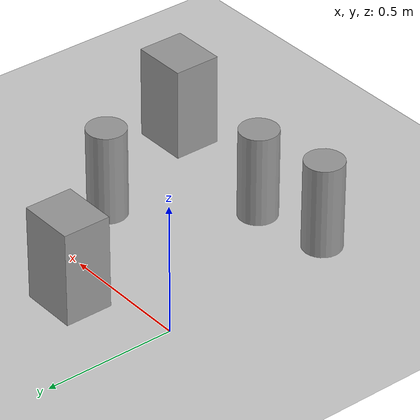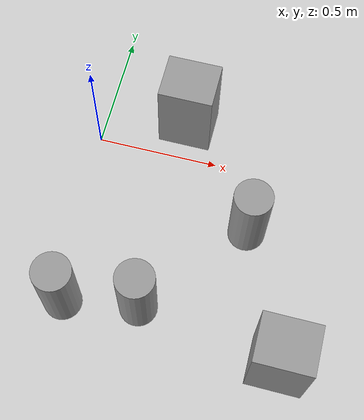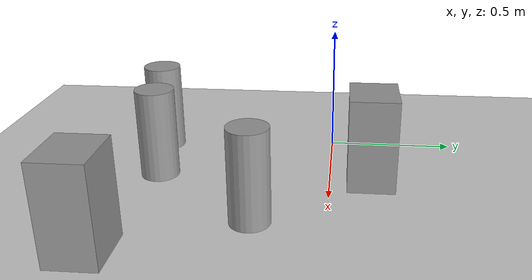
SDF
<sdf version="1.6">
 <world name="default">
  <light name="sun" type="directional">
   <pose>0 0 10 0 -0 0</pose>
   <diffuse>0.8 0.8 0.8 1</diffuse>
   <specular>0.2 0.2 0.2 1</specular>
   <attenuation>
    <range>1000</range>
    <constant>0.9</constant>
    <linear>0.01</linear>
    <quadratic>0.001</quadratic>
   </attenuation>
   <direction>-0.5 0.1 -0.9</direction>
  </light>
  <model name="ground_plane">
   <static>1</static>
   <link name="link">
    <collision name="collision">
     <geometry><plane><normal>0 0 1</normal><size>100 100</size></plane></geometry>
     <surface><friction><ode><mu>100</mu><mu2>50</mu2></ode></friction></surface>
    </collision>
    <visual name="visual">
     <cast_shadows>0</cast_shadows>
     <geometry><plane><normal>0 0 1</normal><size>100 100</size></plane></geometry>
     <material>
      <script><uri>file://media/materials/scripts/gazebo.material</uri><name>Gazebo/Grey</name></script>
     </material>
    </visual>
   </link>
  </model>
  <gravity>0 0 -9.8</gravity>
  <magnetic_field>6e-06 2.3e-05 -4.2e-05</magnetic_field>
  <atmosphere type="adiabatic"/>
  <physics name="default_physics" default="0" type="ode">
   <max_step_size>0.001</max_step_size>
   <real_time_factor>1</real_time_factor>
   <real_time_update_rate>1000</real_time_update_rate>
  </physics>
  <scene><ambient>0.4 0.4 0.4 1</ambient><background>0.7 0.7 0.7 1</background><shadows>1</shadows></scene>
  <spherical_coordinates>
   <surface_model>EARTH_WGS84</surface_model>
   <latitude_deg>0</latitude_deg>
   <longitude_deg>0</longitude_deg>
   <elevation>0</elevation>
   <heading_deg>0</heading_deg>
  </spherical_coordinates>
  <model name="unit_cylinder">
   <pose>0.06107 -0.722183 0.177366 0 0 -8e-06</pose>
   <link name="link">
    <inertial>
     <mass>1</mass>
     <inertia><ixx>0.145833</ixx><ixy>0</ixy><ixz>0</ixz><iyy>0.145833</iyy><iyz>0</iyz><izz>0.125</izz></inertia>
    </inertial>
    <collision name="collision">
     <geometry><cylinder><radius>0.0746705</radius><length>0.35475</length></cylinder></geometry>
    </collision>
    <visual name="visual">
     <geometry><cylinder><radius>0.0746705</radius><length>0.35475</length></cylinder></geometry>
     <material>
      <script><name>Gazebo/Grey</name><uri>file://media/materials/scripts/gazebo.material</uri></script>
     </material>
    </visual>
   </link>
  </model>
  <model name="unit_box">
   <pose>0.915074 -0.766144 0.181492 -2e-06 -2e-06 -5.3e-05</pose>
   <link name="link">
    <inertial>
     <mass>1</mass>
     <inertia>
      <ixx>0.166667</ixx>
      <ixy>0</ixy>
      <ixz>0</ixz>
      <iyy>0.166667</iyy>
      <iyz>0</iyz>
      <izz>0.166667</izz>
     </inertia>
    </inertial>
    <collision name="collision">
     <geometry><box><size>0.215925 0.182877 0.362984</size></box></geometry>
    </collision>
    <visual name="visual">
     <geometry><box><size>0.215925 0.182877 0.362984</size></box></geometry>
     <material>
      <script><name>Gazebo/Grey</name><uri>file://media/materials/scripts/gazebo.material</uri></script>
     </material>
    </visual>
   </link>
  </model>
  <model name="unit_box_clone">
   <pose>0.345256 0.157062 0.181491 -1e-06 -5e-06 -3.7e-05</pose>
   <link name="link">
    <inertial>
     <mass>1</mass>
     <inertia>
      <ixx>0.166667</ixx>
      <ixy>0</ixy>
      <ixz>0</ixz>
      <iyy>0.166667</iyy>
      <iyz>0</iyz>
      <izz>0.166667</izz>
     </inertia>
    </inertial>
    <collision name="collision">
     <geometry><box><size>0.215925 0.182877 0.362984</size></box></geometry>
    </collision>
    <visual name="visual">
     <geometry><box><size>0.215925 0.182877 0.362984</size></box></geometry>
     <material>
      <script><name>Gazebo/Grey</name><uri>file://media/materials/scripts/gazebo.material</uri></script>
     </material>
    </visual>
   </link>
  </model>
  <model name="unit_cylinder_clone">
   <pose>0.351366 -0.673159 0.177367 0 -0 2.4e-05</pose>
   <link name="link">
    <inertial>
     <mass>1</mass>
     <inertia><ixx>0.145833</ixx><ixy>0</ixy><ixz>0</ixz><iyy>0.145833</iyy><iyz>0</iyz><izz>0.125</izz></inertia>
    </inertial>
    <collision name="collision">
     <geometry><cylinder><radius>0.0746704</radius><length>0.35475</length></cylinder></geometry>
    </collision>
    <visual name="visual">
     <geometry><cylinder><radius>0.0746704</radius><length>0.35475</length></cylinder></geometry>
     <material>
      <script><name>Gazebo/Grey</name><uri>file://media/materials/scripts/gazebo.material</uri></script>
     </material>
    </visual>
   </link>
  </model>
  <model name="unit_cylinder_clone_1">
   <pose>0.689417 -0.265186 0.177366 0 0 -8e-06</pose>
   <link name="link">
    <inertial>
     <mass>1</mass>
     <inertia><ixx>0.145833</ixx><ixy>0</ixy><ixz>0</ixz><iyy>0.145833</iyy><iyz>0</iyz><izz>0.125</izz></inertia>
    </inertial>
    <collision name="collision">
     <geometry><cylinder><radius>0.0746704</radius><length>0.35475</length></cylinder></geometry>
    </collision>
    <visual name="visual">
     <geometry><cylinder><radius>0.0746704</radius><length>0.35475</length></cylinder></geometry>
     <material>
      <script><name>Gazebo/Grey</name><uri>file://media/materials/scripts/gazebo.material</uri></script>
     </material>
    </visual>
   </link>
  </model>
 </world>
</sdf>
